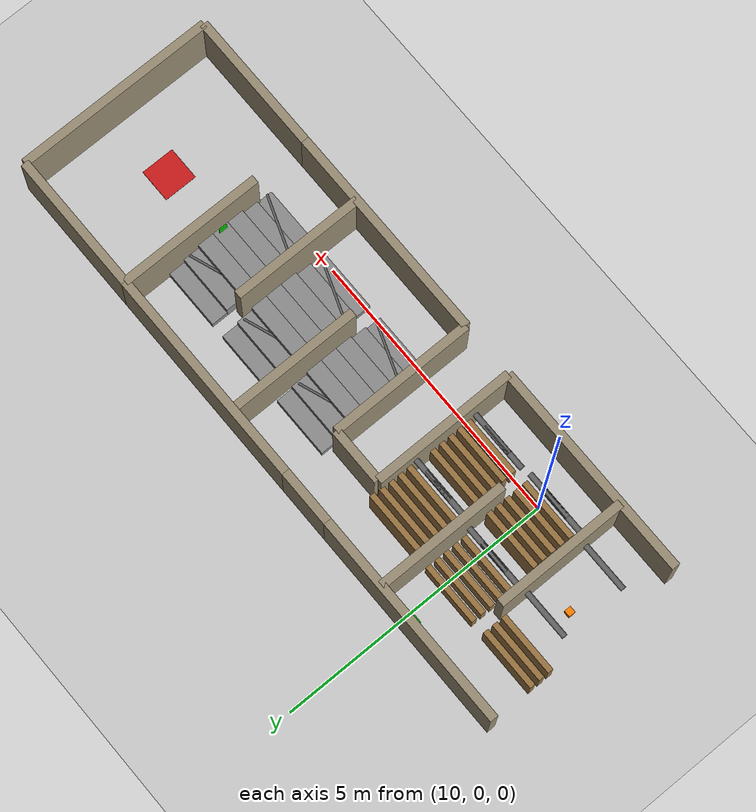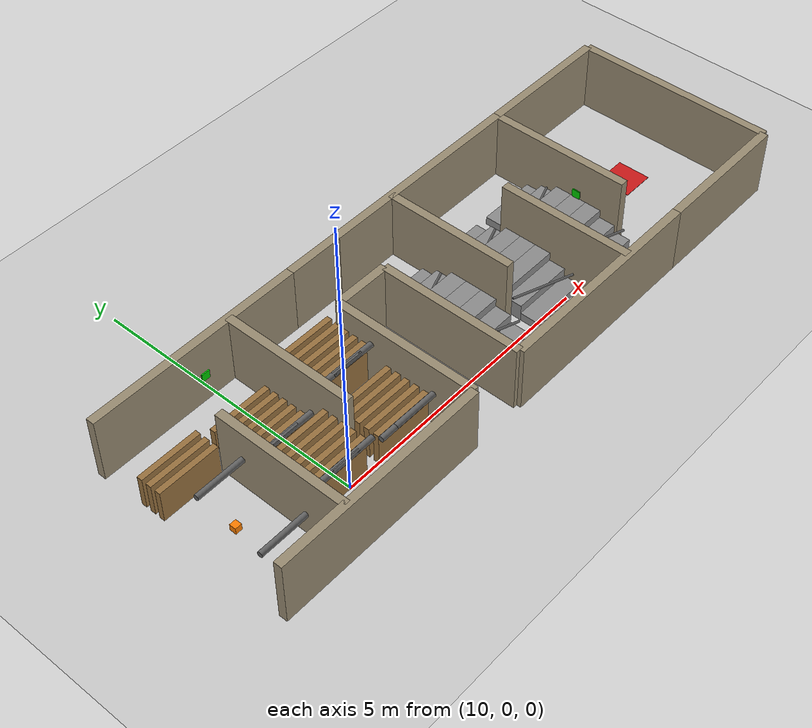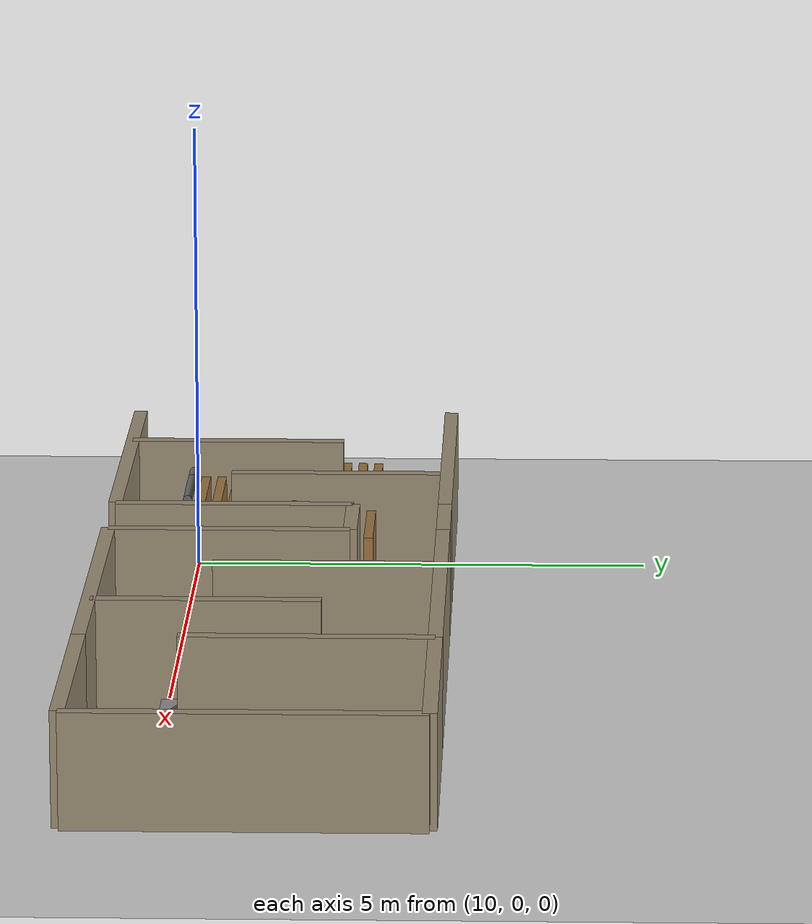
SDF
<sdf version="1.6">
 <world name="lrc_2026">
  <model name="ground_plane">
   <static>true</static>
   <link name="link">
    <collision name="collision">
     <geometry><plane><normal>0 0 1</normal><size>50 50</size></plane></geometry>
    </collision>
    <visual name="visual">
     <geometry><plane><normal>0 0 1</normal><size>50 50</size></plane></geometry>
     <material><ambient>0.8 0.8 0.8 1</ambient><diffuse>0.8 0.8 0.8 1</diffuse></material>
    </visual>
   </link>
  </model>
  <model name="LE_S">
   <static>true</static>
   <pose>9.8000 -0.8000 0.6000 0.0000 0.0000 0.0000</pose>
   <link name="link">
    <collision name="col"><geometry><box><size>3.9000 0.1500 1.2000</size></box></geometry></collision>
    <visual name="vis">
     <geometry><box><size>3.9000 0.1500 1.2000</size></box></geometry>
     <material><ambient>0.6 0.55 0.45 1.0</ambient><diffuse>0.6 0.55 0.45 1.0</diffuse></material>
    </visual>
   </link>
  </model>
  <model name="LE_N">
   <static>true</static>
   <pose>9.8000 2.8000 0.6000 0.0000 0.0000 0.0000</pose>
   <link name="link">
    <collision name="col"><geometry><box><size>3.9000 0.1500 1.2000</size></box></geometry></collision>
    <visual name="vis">
     <geometry><box><size>3.9000 0.1500 1.2000</size></box></geometry>
     <material><ambient>0.6 0.55 0.45 1.0</ambient><diffuse>0.6 0.55 0.45 1.0</diffuse></material>
    </visual>
   </link>
  </model>
  <model name="LE_E_a">
   <static>true</static>
   <pose>11.7500 0.5000 0.6000 0.0000 0.0000 0.0000</pose>
   <link name="link">
    <collision name="col"><geometry><box><size>0.1500 2.6000 1.2000</size></box></geometry></collision>
    <visual name="vis">
     <geometry><box><size>0.1500 2.6000 1.2000</size></box></geometry>
     <material><ambient>0.6 0.55 0.45 1.0</ambient><diffuse>0.6 0.55 0.45 1.0</diffuse></material>
    </visual>
   </link>
  </model>
  <model name="LE_d0">
   <static>true</static>
   <pose>9.1250 0.4000 0.6000 0.0000 0.0000 0.0000</pose>
   <link name="link">
    <collision name="col"><geometry><box><size>0.1500 2.4000 1.2000</size></box></geometry></collision>
    <visual name="vis">
     <geometry><box><size>0.1500 2.4000 1.2000</size></box></geometry>
     <material><ambient>0.6 0.55 0.45 1.0</ambient><diffuse>0.6 0.55 0.45 1.0</diffuse></material>
    </visual>
   </link>
  </model>
  <model name="LE_d1">
   <static>true</static>
   <pose>10.4750 1.6000 0.6000 0.0000 0.0000 0.0000</pose>
   <link name="link">
    <collision name="col"><geometry><box><size>0.1500 2.4000 1.2000</size></box></geometry></collision>
    <visual name="vis">
     <geometry><box><size>0.1500 2.4000 1.2000</size></box></geometry>
     <material><ambient>0.6 0.55 0.45 1.0</ambient><diffuse>0.6 0.55 0.45 1.0</diffuse></material>
    </visual>
   </link>
  </model>
  <model name="cpipe_0_0_1">
   <static>true</static>
   <pose>8.6000 -0.1000 0.4500 0 1.5708 0</pose>
   <link name="link">
    <collision name="col">
     <geometry><cylinder><radius>0.05</radius><length>0.8800000000000001</length></cylinder></geometry>
    </collision>
    <visual name="vis">
     <geometry><cylinder><radius>0.05</radius><length>0.8800000000000001</length></cylinder></geometry>
     <material><ambient>0.4 0.4 0.4 1.0</ambient><diffuse>0.4 0.4 0.4 1.0</diffuse></material>
    </visual>
   </link>
  </model>
  <model name="pclimb_0_1_2">
   <static>true</static>
   <pose>8.4500 1.6000 0.3000 0.0000 0.0000 0.0000</pose>
   <link name="link">
    <collision name="col"><geometry><box><size>1.1000 0.1000 0.6000</size></box></geometry></collision>
    <visual name="vis">
     <geometry><box><size>1.1000 0.1000 0.6000</size></box></geometry>
     <material><ambient>0.6 0.45 0.25 1.0</ambient><diffuse>0.6 0.45 0.25 1.0</diffuse></material>
    </visual>
   </link>
  </model>
  <model name="pclimb_0_1_3">
   <static>true</static>
   <pose>8.4500 1.7800 0.3000 0.0000 0.0000 0.0000</pose>
   <link name="link">
    <collision name="col"><geometry><box><size>1.1000 0.1000 0.6000</size></box></geometry></collision>
    <visual name="vis">
     <geometry><box><size>1.1000 0.1000 0.6000</size></box></geometry>
     <material><ambient>0.6 0.45 0.25 1.0</ambient><diffuse>0.6 0.45 0.25 1.0</diffuse></material>
    </visual>
   </link>
  </model>
  <model name="pclimb_0_1_4">
   <static>true</static>
   <pose>8.4500 1.9600 0.3000 0.0000 0.0000 0.0000</pose>
   <link name="link">
    <collision name="col"><geometry><box><size>1.1000 0.1000 0.6000</size></box></geometry></collision>
    <visual name="vis">
     <geometry><box><size>1.1000 0.1000 0.6000</size></box></geometry>
     <material><ambient>0.6 0.45 0.25 1.0</ambient><diffuse>0.6 0.45 0.25 1.0</diffuse></material>
    </visual>
   </link>
  </model>
  <model name="cpipe_0_1_1">
   <static>true</static>
   <pose>8.6000 1.1000 0.6500 0 1.5708 0</pose>
   <link name="link">
    <collision name="col">
     <geometry><cylinder><radius>0.05</radius><length>0.8800000000000001</length></cylinder></geometry>
    </collision>
    <visual name="vis">
     <geometry><cylinder><radius>0.05</radius><length>0.8800000000000001</length></cylinder></geometry>
     <material><ambient>0.4 0.4 0.4 1.0</ambient><diffuse>0.4 0.4 0.4 1.0</diffuse></material>
    </visual>
   </link>
  </model>
  <model name="pclimb_1_0_0">
   <static>true</static>
   <pose>9.8000 0.0400 0.4000 0.0000 0.0000 0.0000</pose>
   <link name="link">
    <collision name="col"><geometry><box><size>1.1000 0.1000 0.8000</size></box></geometry></collision>
    <visual name="vis">
     <geometry><box><size>1.1000 0.1000 0.8000</size></box></geometry>
     <material><ambient>0.6 0.45 0.25 1.0</ambient><diffuse>0.6 0.45 0.25 1.0</diffuse></material>
    </visual>
   </link>
  </model>
  <model name="pclimb_1_0_1">
   <static>true</static>
   <pose>9.8000 0.2200 0.4000 0.0000 0.0000 0.0000</pose>
   <link name="link">
    <collision name="col"><geometry><box><size>1.1000 0.1000 0.8000</size></box></geometry></collision>
    <visual name="vis">
     <geometry><box><size>1.1000 0.1000 0.8000</size></box></geometry>
     <material><ambient>0.6 0.45 0.25 1.0</ambient><diffuse>0.6 0.45 0.25 1.0</diffuse></material>
    </visual>
   </link>
  </model>
  <model name="pclimb_1_0_2">
   <static>true</static>
   <pose>9.8000 0.4000 0.4000 0.0000 0.0000 0.0000</pose>
   <link name="link">
    <collision name="col"><geometry><box><size>1.1000 0.1000 0.8000</size></box></geometry></collision>
    <visual name="vis">
     <geometry><box><size>1.1000 0.1000 0.8000</size></box></geometry>
     <material><ambient>0.6 0.45 0.25 1.0</ambient><diffuse>0.6 0.45 0.25 1.0</diffuse></material>
    </visual>
   </link>
  </model>
  <model name="pclimb_1_0_3">
   <static>true</static>
   <pose>9.8000 0.5800 0.4000 0.0000 0.0000 0.0000</pose>
   <link name="link">
    <collision name="col"><geometry><box><size>1.1000 0.1000 0.8000</size></box></geometry></collision>
    <visual name="vis">
     <geometry><box><size>1.1000 0.1000 0.8000</size></box></geometry>
     <material><ambient>0.6 0.45 0.25 1.0</ambient><diffuse>0.6 0.45 0.25 1.0</diffuse></material>
    </visual>
   </link>
  </model>
  <model name="pclimb_1_0_4">
   <static>true</static>
   <pose>9.8000 0.7600 0.4000 0.0000 0.0000 0.0000</pose>
   <link name="link">
    <collision name="col"><geometry><box><size>1.1000 0.1000 0.8000</size></box></geometry></collision>
    <visual name="vis">
     <geometry><box><size>1.1000 0.1000 0.8000</size></box></geometry>
     <material><ambient>0.6 0.45 0.25 1.0</ambient><diffuse>0.6 0.45 0.25 1.0</diffuse></material>
    </visual>
   </link>
  </model>
  <model name="cpipe_1_0_0">
   <static>true</static>
   <pose>9.6500 -0.1000 0.8500 0 1.5708 0</pose>
   <link name="link">
    <collision name="col">
     <geometry><cylinder><radius>0.05</radius><length>0.8800000000000001</length></cylinder></geometry>
    </collision>
    <visual name="vis">
     <geometry><cylinder><radius>0.05</radius><length>0.8800000000000001</length></cylinder></geometry>
     <material><ambient>0.4 0.4 0.4 1.0</ambient><diffuse>0.4 0.4 0.4 1.0</diffuse></material>
    </visual>
   </link>
  </model>
  <model name="cpipe_1_0_1">
   <static>true</static>
   <pose>9.9500 -0.1000 0.8500 0 1.5708 0</pose>
   <link name="link">
    <collision name="col">
     <geometry><cylinder><radius>0.05</radius><length>0.8800000000000001</length></cylinder></geometry>
    </collision>
    <visual name="vis">
     <geometry><cylinder><radius>0.05</radius><length>0.8800000000000001</length></cylinder></geometry>
     <material><ambient>0.4 0.4 0.4 1.0</ambient><diffuse>0.4 0.4 0.4 1.0</diffuse></material>
    </visual>
   </link>
  </model>
  <model name="pclimb_1_1_0">
   <static>true</static>
   <pose>9.8000 1.2400 0.2000 0.0000 0.0000 0.0000</pose>
   <link name="link">
    <collision name="col"><geometry><box><size>1.1000 0.1000 0.4000</size></box></geometry></collision>
    <visual name="vis">
     <geometry><box><size>1.1000 0.1000 0.4000</size></box></geometry>
     <material><ambient>0.6 0.45 0.25 1.0</ambient><diffuse>0.6 0.45 0.25 1.0</diffuse></material>
    </visual>
   </link>
  </model>
  <model name="pclimb_1_1_1">
   <static>true</static>
   <pose>9.8000 1.4200 0.2000 0.0000 0.0000 0.0000</pose>
   <link name="link">
    <collision name="col"><geometry><box><size>1.1000 0.1000 0.4000</size></box></geometry></collision>
    <visual name="vis">
     <geometry><box><size>1.1000 0.1000 0.4000</size></box></geometry>
     <material><ambient>0.6 0.45 0.25 1.0</ambient><diffuse>0.6 0.45 0.25 1.0</diffuse></material>
    </visual>
   </link>
  </model>
  <model name="pclimb_1_1_2">
   <static>true</static>
   <pose>9.8000 1.6000 0.2000 0.0000 0.0000 0.0000</pose>
   <link name="link">
    <collision name="col"><geometry><box><size>1.1000 0.1000 0.4000</size></box></geometry></collision>
    <visual name="vis">
     <geometry><box><size>1.1000 0.1000 0.4000</size></box></geometry>
     <material><ambient>0.6 0.45 0.25 1.0</ambient><diffuse>0.6 0.45 0.25 1.0</diffuse></material>
    </visual>
   </link>
  </model>
  <model name="pclimb_1_1_3">
   <static>true</static>
   <pose>9.8000 1.7800 0.2000 0.0000 0.0000 0.0000</pose>
   <link name="link">
    <collision name="col"><geometry><box><size>1.1000 0.1000 0.4000</size></box></geometry></collision>
    <visual name="vis">
     <geometry><box><size>1.1000 0.1000 0.4000</size></box></geometry>
     <material><ambient>0.6 0.45 0.25 1.0</ambient><diffuse>0.6 0.45 0.25 1.0</diffuse></material>
    </visual>
   </link>
  </model>
  <model name="pclimb_1_1_4">
   <static>true</static>
   <pose>9.8000 1.9600 0.2000 0.0000 0.0000 0.0000</pose>
   <link name="link">
    <collision name="col"><geometry><box><size>1.1000 0.1000 0.4000</size></box></geometry></collision>
    <visual name="vis">
     <geometry><box><size>1.1000 0.1000 0.4000</size></box></geometry>
     <material><ambient>0.6 0.45 0.25 1.0</ambient><diffuse>0.6 0.45 0.25 1.0</diffuse></material>
    </visual>
   </link>
  </model>
  <model name="cpipe_1_1_0">
   <static>true</static>
   <pose>9.6500 1.1000 0.4500 0 1.5708 0</pose>
   <link name="link">
    <collision name="col">
     <geometry><cylinder><radius>0.05</radius><length>0.8800000000000001</length></cylinder></geometry>
    </collision>
    <visual name="vis">
     <geometry><cylinder><radius>0.05</radius><length>0.8800000000000001</length></cylinder></geometry>
     <material><ambient>0.4 0.4 0.4 1.0</ambient><diffuse>0.4 0.4 0.4 1.0</diffuse></material>
    </visual>
   </link>
  </model>
  <model name="cpipe_1_1_1">
   <static>true</static>
   <pose>9.9500 1.1000 0.4500 0 1.5708 0</pose>
   <link name="link">
    <collision name="col">
     <geometry><cylinder><radius>0.05</radius><length>0.8800000000000001</length></cylinder></geometry>
    </collision>
    <visual name="vis">
     <geometry><cylinder><radius>0.05</radius><length>0.8800000000000001</length></cylinder></geometry>
     <material><ambient>0.4 0.4 0.4 1.0</ambient><diffuse>0.4 0.4 0.4 1.0</diffuse></material>
    </visual>
   </link>
  </model>
  <model name="pclimb_2_0_0">
   <static>true</static>
   <pose>11.1500 0.0400 0.3000 0.0000 0.0000 0.0000</pose>
   <link name="link">
    <collision name="col"><geometry><box><size>1.1000 0.1000 0.6000</size></box></geometry></collision>
    <visual name="vis">
     <geometry><box><size>1.1000 0.1000 0.6000</size></box></geometry>
     <material><ambient>0.6 0.45 0.25 1.0</ambient><diffuse>0.6 0.45 0.25 1.0</diffuse></material>
    </visual>
   </link>
  </model>
  <model name="pclimb_2_0_1">
   <static>true</static>
   <pose>11.1500 0.2200 0.3000 0.0000 0.0000 0.0000</pose>
   <link name="link">
    <collision name="col"><geometry><box><size>1.1000 0.1000 0.6000</size></box></geometry></collision>
    <visual name="vis">
     <geometry><box><size>1.1000 0.1000 0.6000</size></box></geometry>
     <material><ambient>0.6 0.45 0.25 1.0</ambient><diffuse>0.6 0.45 0.25 1.0</diffuse></material>
    </visual>
   </link>
  </model>
  <model name="pclimb_2_0_2">
   <static>true</static>
   <pose>11.1500 0.4000 0.3000 0.0000 0.0000 0.0000</pose>
   <link name="link">
    <collision name="col"><geometry><box><size>1.1000 0.1000 0.6000</size></box></geometry></collision>
    <visual name="vis">
     <geometry><box><size>1.1000 0.1000 0.6000</size></box></geometry>
     <material><ambient>0.6 0.45 0.25 1.0</ambient><diffuse>0.6 0.45 0.25 1.0</diffuse></material>
    </visual>
   </link>
  </model>
  <model name="pclimb_2_0_3">
   <static>true</static>
   <pose>11.1500 0.5800 0.3000 0.0000 0.0000 0.0000</pose>
   <link name="link">
    <collision name="col"><geometry><box><size>1.1000 0.1000 0.6000</size></box></geometry></collision>
    <visual name="vis">
     <geometry><box><size>1.1000 0.1000 0.6000</size></box></geometry>
     <material><ambient>0.6 0.45 0.25 1.0</ambient><diffuse>0.6 0.45 0.25 1.0</diffuse></material>
    </visual>
   </link>
  </model>
  <model name="pclimb_2_0_4">
   <static>true</static>
   <pose>11.1500 0.7600 0.3000 0.0000 0.0000 0.0000</pose>
   <link name="link">
    <collision name="col"><geometry><box><size>1.1000 0.1000 0.6000</size></box></geometry></collision>
    <visual name="vis">
     <geometry><box><size>1.1000 0.1000 0.6000</size></box></geometry>
     <material><ambient>0.6 0.45 0.25 1.0</ambient><diffuse>0.6 0.45 0.25 1.0</diffuse></material>
    </visual>
   </link>
  </model>
  <model name="cpipe_2_0_0">
   <static>true</static>
   <pose>11.0000 -0.1000 0.6500 0 1.5708 0</pose>
   <link name="link">
    <collision name="col">
     <geometry><cylinder><radius>0.05</radius><length>0.8800000000000001</length></cylinder></geometry>
    </collision>
    <visual name="vis">
     <geometry><cylinder><radius>0.05</radius><length>0.8800000000000001</length></cylinder></geometry>
     <material><ambient>0.4 0.4 0.4 1.0</ambient><diffuse>0.4 0.4 0.4 1.0</diffuse></material>
    </visual>
   </link>
  </model>
  <model name="cpipe_2_0_1">
   <static>true</static>
   <pose>11.3000 -0.1000 0.6500 0 1.5708 0</pose>
   <link name="link">
    <collision name="col">
     <geometry><cylinder><radius>0.05</radius><length>0.8800000000000001</length></cylinder></geometry>
    </collision>
    <visual name="vis">
     <geometry><cylinder><radius>0.05</radius><length>0.8800000000000001</length></cylinder></geometry>
     <material><ambient>0.4 0.4 0.4 1.0</ambient><diffuse>0.4 0.4 0.4 1.0</diffuse></material>
    </visual>
   </link>
  </model>
  <model name="pclimb_2_1_0">
   <static>true</static>
   <pose>11.1500 1.2400 0.4000 0.0000 0.0000 0.0000</pose>
   <link name="link">
    <collision name="col"><geometry><box><size>1.1000 0.1000 0.8000</size></box></geometry></collision>
    <visual name="vis">
     <geometry><box><size>1.1000 0.1000 0.8000</size></box></geometry>
     <material><ambient>0.6 0.45 0.25 1.0</ambient><diffuse>0.6 0.45 0.25 1.0</diffuse></material>
    </visual>
   </link>
  </model>
  <model name="pclimb_2_1_1">
   <static>true</static>
   <pose>11.1500 1.4200 0.4000 0.0000 0.0000 0.0000</pose>
   <link name="link">
    <collision name="col"><geometry><box><size>1.1000 0.1000 0.8000</size></box></geometry></collision>
    <visual name="vis">
     <geometry><box><size>1.1000 0.1000 0.8000</size></box></geometry>
     <material><ambient>0.6 0.45 0.25 1.0</ambient><diffuse>0.6 0.45 0.25 1.0</diffuse></material>
    </visual>
   </link>
  </model>
  <model name="pclimb_2_1_2">
   <static>true</static>
   <pose>11.1500 1.6000 0.4000 0.0000 0.0000 0.0000</pose>
   <link name="link">
    <collision name="col"><geometry><box><size>1.1000 0.1000 0.8000</size></box></geometry></collision>
    <visual name="vis">
     <geometry><box><size>1.1000 0.1000 0.8000</size></box></geometry>
     <material><ambient>0.6 0.45 0.25 1.0</ambient><diffuse>0.6 0.45 0.25 1.0</diffuse></material>
    </visual>
   </link>
  </model>
  <model name="pclimb_2_1_3">
   <static>true</static>
   <pose>11.1500 1.7800 0.4000 0.0000 0.0000 0.0000</pose>
   <link name="link">
    <collision name="col"><geometry><box><size>1.1000 0.1000 0.8000</size></box></geometry></collision>
    <visual name="vis">
     <geometry><box><size>1.1000 0.1000 0.8000</size></box></geometry>
     <material><ambient>0.6 0.45 0.25 1.0</ambient><diffuse>0.6 0.45 0.25 1.0</diffuse></material>
    </visual>
   </link>
  </model>
  <model name="pclimb_2_1_4">
   <static>true</static>
   <pose>11.1500 1.9600 0.4000 0.0000 0.0000 0.0000</pose>
   <link name="link">
    <collision name="col"><geometry><box><size>1.1000 0.1000 0.8000</size></box></geometry></collision>
    <visual name="vis">
     <geometry><box><size>1.1000 0.1000 0.8000</size></box></geometry>
     <material><ambient>0.6 0.45 0.25 1.0</ambient><diffuse>0.6 0.45 0.25 1.0</diffuse></material>
    </visual>
   </link>
  </model>
  <model name="cpipe_2_1_0">
   <static>true</static>
   <pose>11.0000 1.1000 0.8500 0 1.5708 0</pose>
   <link name="link">
    <collision name="col">
     <geometry><cylinder><radius>0.05</radius><length>0.8800000000000001</length></cylinder></geometry>
    </collision>
    <visual name="vis">
     <geometry><cylinder><radius>0.05</radius><length>0.8800000000000001</length></cylinder></geometry>
     <material><ambient>0.4 0.4 0.4 1.0</ambient><diffuse>0.4 0.4 0.4 1.0</diffuse></material>
    </visual>
   </link>
  </model>
  <model name="cpipe_2_1_1">
   <static>true</static>
   <pose>11.3000 1.1000 0.8500 0 1.5708 0</pose>
   <link name="link">
    <collision name="col">
     <geometry><cylinder><radius>0.05</radius><length>0.8800000000000001</length></cylinder></geometry>
    </collision>
    <visual name="vis">
     <geometry><cylinder><radius>0.05</radius><length>0.8800000000000001</length></cylinder></geometry>
     <material><ambient>0.4 0.4 0.4 1.0</ambient><diffuse>0.4 0.4 0.4 1.0</diffuse></material>
    </visual>
   </link>
  </model>
  <model name="qr_E">
   <static>true</static>
   <pose>9.8000 2.6500 0.6000 0.0000 0.0000 0.0000</pose>
   <link name="link">
    <collision name="col"><geometry><box><size>0.1500 0.0200 0.1500</size></box></geometry></collision>
    <visual name="vis">
     <geometry><box><size>0.1500 0.0200 0.1500</size></box></geometry>
     <material><ambient>0.0 0.8 0.0 1.0</ambient><diffuse>0.0 0.8 0.0 1.0</diffuse></material>
    </visual>
   </link>
  </model>
  <model name="haz_E">
   <static>true</static>
   <pose>8.4500 0.7000 0.0600 0.0000 0.0000 0.0000</pose>
   <link name="link">
    <collision name="col"><geometry><box><size>0.1200 0.1200 0.1200</size></box></geometry></collision>
    <visual name="vis">
     <geometry><box><size>0.1200 0.1200 0.1200</size></box></geometry>
     <material><ambient>1.0 0.5 0.0 1.0</ambient><diffuse>1.0 0.5 0.0 1.0</diffuse></material>
    </visual>
   </link>
  </model>
  <model name="LF_S">
   <static>true</static>
   <pose>14.7000 -0.8000 0.6000 0.0000 0.0000 0.0000</pose>
   <link name="link">
    <collision name="col"><geometry><box><size>3.9000 0.1500 1.2000</size></box></geometry></collision>
    <visual name="vis">
     <geometry><box><size>3.9000 0.1500 1.2000</size></box></geometry>
     <material><ambient>0.6 0.55 0.45 1.0</ambient><diffuse>0.6 0.55 0.45 1.0</diffuse></material>
    </visual>
   </link>
  </model>
  <model name="LF_N">
   <static>true</static>
   <pose>14.7000 2.8000 0.6000 0.0000 0.0000 0.0000</pose>
   <link name="link">
    <collision name="col"><geometry><box><size>3.9000 0.1500 1.2000</size></box></geometry></collision>
    <visual name="vis">
     <geometry><box><size>3.9000 0.1500 1.2000</size></box></geometry>
     <material><ambient>0.6 0.55 0.45 1.0</ambient><diffuse>0.6 0.55 0.45 1.0</diffuse></material>
    </visual>
   </link>
  </model>
  <model name="LF_W_a">
   <static>true</static>
   <pose>12.7500 0.5000 0.6000 0.0000 0.0000 0.0000</pose>
   <link name="link">
    <collision name="col"><geometry><box><size>0.1500 2.6000 1.2000</size></box></geometry></collision>
    <visual name="vis">
     <geometry><box><size>0.1500 2.6000 1.2000</size></box></geometry>
     <material><ambient>0.6 0.55 0.45 1.0</ambient><diffuse>0.6 0.55 0.45 1.0</diffuse></material>
    </visual>
   </link>
  </model>
  <model name="LF_E_b">
   <static>true</static>
   <pose>16.6500 1.5000 0.6000 0.0000 0.0000 0.0000</pose>
   <link name="link">
    <collision name="col"><geometry><box><size>0.1500 2.6000 1.2000</size></box></geometry></collision>
    <visual name="vis">
     <geometry><box><size>0.1500 2.6000 1.2000</size></box></geometry>
     <material><ambient>0.6 0.55 0.45 1.0</ambient><diffuse>0.6 0.55 0.45 1.0</diffuse></material>
    </visual>
   </link>
  </model>
  <model name="LF_d0">
   <static>true</static>
   <pose>14.0250 1.6000 0.6000 0.0000 0.0000 0.0000</pose>
   <link name="link">
    <collision name="col"><geometry><box><size>0.1500 2.4000 1.2000</size></box></geometry></collision>
    <visual name="vis">
     <geometry><box><size>0.1500 2.4000 1.2000</size></box></geometry>
     <material><ambient>0.6 0.55 0.45 1.0</ambient><diffuse>0.6 0.55 0.45 1.0</diffuse></material>
    </visual>
   </link>
  </model>
  <model name="LF_d1">
   <static>true</static>
   <pose>15.3750 0.4000 0.6000 0.0000 0.0000 0.0000</pose>
   <link name="link">
    <collision name="col"><geometry><box><size>0.1500 2.4000 1.2000</size></box></geometry></collision>
    <visual name="vis">
     <geometry><box><size>0.1500 2.4000 1.2000</size></box></geometry>
     <material><ambient>0.6 0.55 0.45 1.0</ambient><diffuse>0.6 0.55 0.45 1.0</diffuse></material>
    </visual>
   </link>
  </model>
  <model name="stup_0_0">
   <static>true</static>
   <pose>13.3500 0.1000 0.0750 0.0000 0.0000 0.0000</pose>
   <link name="link">
    <collision name="col"><geometry><box><size>1.1000 0.3000 0.1500</size></box></geometry></collision>
    <visual name="vis">
     <geometry><box><size>1.1000 0.3000 0.1500</size></box></geometry>
     <material><ambient>0.55 0.55 0.55 1.0</ambient><diffuse>0.55 0.55 0.55 1.0</diffuse></material>
    </visual>
   </link>
  </model>
  <model name="stup_0_1">
   <static>true</static>
   <pose>13.3500 0.4000 0.1500 0.0000 0.0000 0.0000</pose>
   <link name="link">
    <collision name="col"><geometry><box><size>1.1000 0.3000 0.3000</size></box></geometry></collision>
    <visual name="vis">
     <geometry><box><size>1.1000 0.3000 0.3000</size></box></geometry>
     <material><ambient>0.55 0.55 0.55 1.0</ambient><diffuse>0.55 0.55 0.55 1.0</diffuse></material>
    </visual>
   </link>
  </model>
  <model name="stup_0_2">
   <static>true</static>
   <pose>13.3500 0.7000 0.2250 0.0000 0.0000 0.0000</pose>
   <link name="link">
    <collision name="col"><geometry><box><size>1.1000 0.3000 0.4500</size></box></geometry></collision>
    <visual name="vis">
     <geometry><box><size>1.1000 0.3000 0.4500</size></box></geometry>
     <material><ambient>0.55 0.55 0.55 1.0</ambient><diffuse>0.55 0.55 0.55 1.0</diffuse></material>
    </visual>
   </link>
  </model>
  <model name="stland_0">
   <static>true</static>
   <pose>13.3500 1.0000 0.2250 0.0000 0.0000 0.0000</pose>
   <link name="link">
    <collision name="col"><geometry><box><size>1.1000 0.3000 0.4500</size></box></geometry></collision>
    <visual name="vis">
     <geometry><box><size>1.1000 0.3000 0.4500</size></box></geometry>
     <material><ambient>0.55 0.55 0.55 1.0</ambient><diffuse>0.55 0.55 0.55 1.0</diffuse></material>
    </visual>
   </link>
  </model>
  <model name="stdn_0_0">
   <static>true</static>
   <pose>13.3500 1.3000 0.2250 0.0000 0.0000 0.0000</pose>
   <link name="link">
    <collision name="col"><geometry><box><size>1.1000 0.3000 0.4500</size></box></geometry></collision>
    <visual name="vis">
     <geometry><box><size>1.1000 0.3000 0.4500</size></box></geometry>
     <material><ambient>0.55 0.55 0.55 1.0</ambient><diffuse>0.55 0.55 0.55 1.0</diffuse></material>
    </visual>
   </link>
  </model>
  <model name="stdn_0_1">
   <static>true</static>
   <pose>13.3500 1.6000 0.1500 0.0000 0.0000 0.0000</pose>
   <link name="link">
    <collision name="col"><geometry><box><size>1.1000 0.3000 0.3000</size></box></geometry></collision>
    <visual name="vis">
     <geometry><box><size>1.1000 0.3000 0.3000</size></box></geometry>
     <material><ambient>0.55 0.55 0.55 1.0</ambient><diffuse>0.55 0.55 0.55 1.0</diffuse></material>
    </visual>
   </link>
  </model>
  <model name="stdn_0_2">
   <static>true</static>
   <pose>13.3500 1.9000 0.0750 0.0000 0.0000 0.0000</pose>
   <link name="link">
    <collision name="col"><geometry><box><size>1.1000 0.3000 0.1500</size></box></geometry></collision>
    <visual name="vis">
     <geometry><box><size>1.1000 0.3000 0.1500</size></box></geometry>
     <material><ambient>0.55 0.55 0.55 1.0</ambient><diffuse>0.55 0.55 0.55 1.0</diffuse></material>
    </visual>
   </link>
  </model>
  <model name="debup_0">
   <static>true</static>
   <pose>13.3500 0.2500 0.3200 0.3500 1.5708 0</pose>
   <link name="link">
    <collision name="col">
     <geometry><cylinder><radius>0.02</radius><length>1.1</length></cylinder></geometry>
    </collision>
    <visual name="vis">
     <geometry><cylinder><radius>0.02</radius><length>1.1</length></cylinder></geometry>
     <material><ambient>0.4 0.4 0.4 1.0</ambient><diffuse>0.4 0.4 0.4 1.0</diffuse></material>
    </visual>
   </link>
  </model>
  <model name="debdn_0">
   <static>true</static>
   <pose>13.3500 1.4500 0.3200 -0.3500 1.5708 0</pose>
   <link name="link">
    <collision name="col">
     <geometry><cylinder><radius>0.02</radius><length>1.1</length></cylinder></geometry>
    </collision>
    <visual name="vis">
     <geometry><cylinder><radius>0.02</radius><length>1.1</length></cylinder></geometry>
     <material><ambient>0.4 0.4 0.4 1.0</ambient><diffuse>0.4 0.4 0.4 1.0</diffuse></material>
    </visual>
   </link>
  </model>
  <model name="stup_1_0">
   <static>true</static>
   <pose>14.7000 0.1000 0.0750 0.0000 0.0000 0.0000</pose>
   <link name="link">
    <collision name="col"><geometry><box><size>1.1000 0.3000 0.1500</size></box></geometry></collision>
    <visual name="vis">
     <geometry><box><size>1.1000 0.3000 0.1500</size></box></geometry>
     <material><ambient>0.55 0.55 0.55 1.0</ambient><diffuse>0.55 0.55 0.55 1.0</diffuse></material>
    </visual>
   </link>
  </model>
  <model name="stup_1_1">
   <static>true</static>
   <pose>14.7000 0.4000 0.1500 0.0000 0.0000 0.0000</pose>
   <link name="link">
    <collision name="col"><geometry><box><size>1.1000 0.3000 0.3000</size></box></geometry></collision>
    <visual name="vis">
     <geometry><box><size>1.1000 0.3000 0.3000</size></box></geometry>
     <material><ambient>0.55 0.55 0.55 1.0</ambient><diffuse>0.55 0.55 0.55 1.0</diffuse></material>
    </visual>
   </link>
  </model>
  <model name="stup_1_2">
   <static>true</static>
   <pose>14.7000 0.7000 0.2250 0.0000 0.0000 0.0000</pose>
   <link name="link">
    <collision name="col"><geometry><box><size>1.1000 0.3000 0.4500</size></box></geometry></collision>
    <visual name="vis">
     <geometry><box><size>1.1000 0.3000 0.4500</size></box></geometry>
     <material><ambient>0.55 0.55 0.55 1.0</ambient><diffuse>0.55 0.55 0.55 1.0</diffuse></material>
    </visual>
   </link>
  </model>
  <model name="stland_1">
   <static>true</static>
   <pose>14.7000 1.0000 0.2250 0.0000 0.0000 0.0000</pose>
   <link name="link">
    <collision name="col"><geometry><box><size>1.1000 0.3000 0.4500</size></box></geometry></collision>
    <visual name="vis">
     <geometry><box><size>1.1000 0.3000 0.4500</size></box></geometry>
     <material><ambient>0.55 0.55 0.55 1.0</ambient><diffuse>0.55 0.55 0.55 1.0</diffuse></material>
    </visual>
   </link>
  </model>
  <model name="stdn_1_0">
   <static>true</static>
   <pose>14.7000 1.3000 0.2250 0.0000 0.0000 0.0000</pose>
   <link name="link">
    <collision name="col"><geometry><box><size>1.1000 0.3000 0.4500</size></box></geometry></collision>
    <visual name="vis">
     <geometry><box><size>1.1000 0.3000 0.4500</size></box></geometry>
     <material><ambient>0.55 0.55 0.55 1.0</ambient><diffuse>0.55 0.55 0.55 1.0</diffuse></material>
    </visual>
   </link>
  </model>
  <model name="stdn_1_1">
   <static>true</static>
   <pose>14.7000 1.6000 0.1500 0.0000 0.0000 0.0000</pose>
   <link name="link">
    <collision name="col"><geometry><box><size>1.1000 0.3000 0.3000</size></box></geometry></collision>
    <visual name="vis">
     <geometry><box><size>1.1000 0.3000 0.3000</size></box></geometry>
     <material><ambient>0.55 0.55 0.55 1.0</ambient><diffuse>0.55 0.55 0.55 1.0</diffuse></material>
    </visual>
   </link>
  </model>
  <model name="stdn_1_2">
   <static>true</static>
   <pose>14.7000 1.9000 0.0750 0.0000 0.0000 0.0000</pose>
   <link name="link">
    <collision name="col"><geometry><box><size>1.1000 0.3000 0.1500</size></box></geometry></collision>
    <visual name="vis">
     <geometry><box><size>1.1000 0.3000 0.1500</size></box></geometry>
     <material><ambient>0.55 0.55 0.55 1.0</ambient><diffuse>0.55 0.55 0.55 1.0</diffuse></material>
    </visual>
   </link>
  </model>
  <model name="debup_1">
   <static>true</static>
   <pose>14.7000 0.2500 0.3200 0.3500 1.5708 0</pose>
   <link name="link">
    <collision name="col">
     <geometry><cylinder><radius>0.02</radius><length>1.1</length></cylinder></geometry>
    </collision>
    <visual name="vis">
     <geometry><cylinder><radius>0.02</radius><length>1.1</length></cylinder></geometry>
     <material><ambient>0.4 0.4 0.4 1.0</ambient><diffuse>0.4 0.4 0.4 1.0</diffuse></material>
    </visual>
   </link>
  </model>
  <model name="debdn_1">
   <static>true</static>
   <pose>14.7000 1.4500 0.3200 -0.3500 1.5708 0</pose>
   <link name="link">
    <collision name="col">
     <geometry><cylinder><radius>0.02</radius><length>1.1</length></cylinder></geometry>
    </collision>
    <visual name="vis">
     <geometry><cylinder><radius>0.02</radius><length>1.1</length></cylinder></geometry>
     <material><ambient>0.4 0.4 0.4 1.0</ambient><diffuse>0.4 0.4 0.4 1.0</diffuse></material>
    </visual>
   </link>
  </model>
  <model name="stup_2_0">
   <static>true</static>
   <pose>16.0500 0.1000 0.0750 0.0000 0.0000 0.0000</pose>
   <link name="link">
    <collision name="col"><geometry><box><size>1.1000 0.3000 0.1500</size></box></geometry></collision>
    <visual name="vis">
     <geometry><box><size>1.1000 0.3000 0.1500</size></box></geometry>
     <material><ambient>0.55 0.55 0.55 1.0</ambient><diffuse>0.55 0.55 0.55 1.0</diffuse></material>
    </visual>
   </link>
  </model>
  <model name="stup_2_1">
   <static>true</static>
   <pose>16.0500 0.4000 0.1500 0.0000 0.0000 0.0000</pose>
   <link name="link">
    <collision name="col"><geometry><box><size>1.1000 0.3000 0.3000</size></box></geometry></collision>
    <visual name="vis">
     <geometry><box><size>1.1000 0.3000 0.3000</size></box></geometry>
     <material><ambient>0.55 0.55 0.55 1.0</ambient><diffuse>0.55 0.55 0.55 1.0</diffuse></material>
    </visual>
   </link>
  </model>
  <model name="stup_2_2">
   <static>true</static>
   <pose>16.0500 0.7000 0.2250 0.0000 0.0000 0.0000</pose>
   <link name="link">
    <collision name="col"><geometry><box><size>1.1000 0.3000 0.4500</size></box></geometry></collision>
    <visual name="vis">
     <geometry><box><size>1.1000 0.3000 0.4500</size></box></geometry>
     <material><ambient>0.55 0.55 0.55 1.0</ambient><diffuse>0.55 0.55 0.55 1.0</diffuse></material>
    </visual>
   </link>
  </model>
  <model name="stland_2">
   <static>true</static>
   <pose>16.0500 1.0000 0.2250 0.0000 0.0000 0.0000</pose>
   <link name="link">
    <collision name="col"><geometry><box><size>1.1000 0.3000 0.4500</size></box></geometry></collision>
    <visual name="vis">
     <geometry><box><size>1.1000 0.3000 0.4500</size></box></geometry>
     <material><ambient>0.55 0.55 0.55 1.0</ambient><diffuse>0.55 0.55 0.55 1.0</diffuse></material>
    </visual>
   </link>
  </model>
  <model name="stdn_2_0">
   <static>true</static>
   <pose>16.0500 1.3000 0.2250 0.0000 0.0000 0.0000</pose>
   <link name="link">
    <collision name="col"><geometry><box><size>1.1000 0.3000 0.4500</size></box></geometry></collision>
    <visual name="vis">
     <geometry><box><size>1.1000 0.3000 0.4500</size></box></geometry>
     <material><ambient>0.55 0.55 0.55 1.0</ambient><diffuse>0.55 0.55 0.55 1.0</diffuse></material>
    </visual>
   </link>
  </model>
  <model name="stdn_2_1">
   <static>true</static>
   <pose>16.0500 1.6000 0.1500 0.0000 0.0000 0.0000</pose>
   <link name="link">
    <collision name="col"><geometry><box><size>1.1000 0.3000 0.3000</size></box></geometry></collision>
    <visual name="vis">
     <geometry><box><size>1.1000 0.3000 0.3000</size></box></geometry>
     <material><ambient>0.55 0.55 0.55 1.0</ambient><diffuse>0.55 0.55 0.55 1.0</diffuse></material>
    </visual>
   </link>
  </model>
  <model name="stdn_2_2">
   <static>true</static>
   <pose>16.0500 1.9000 0.0750 0.0000 0.0000 0.0000</pose>
   <link name="link">
    <collision name="col"><geometry><box><size>1.1000 0.3000 0.1500</size></box></geometry></collision>
    <visual name="vis">
     <geometry><box><size>1.1000 0.3000 0.1500</size></box></geometry>
     <material><ambient>0.55 0.55 0.55 1.0</ambient><diffuse>0.55 0.55 0.55 1.0</diffuse></material>
    </visual>
   </link>
  </model>
  <model name="debup_2">
   <static>true</static>
   <pose>16.0500 0.2500 0.3200 0.3500 1.5708 0</pose>
   <link name="link">
    <collision name="col">
     <geometry><cylinder><radius>0.02</radius><length>1.1</length></cylinder></geometry>
    </collision>
    <visual name="vis">
     <geometry><cylinder><radius>0.02</radius><length>1.1</length></cylinder></geometry>
     <material><ambient>0.4 0.4 0.4 1.0</ambient><diffuse>0.4 0.4 0.4 1.0</diffuse></material>
    </visual>
   </link>
  </model>
  <model name="debdn_2">
   <static>true</static>
   <pose>16.0500 1.4500 0.3200 -0.3500 1.5708 0</pose>
   <link name="link">
    <collision name="col">
     <geometry><cylinder><radius>0.02</radius><length>1.1</length></cylinder></geometry>
    </collision>
    <visual name="vis">
     <geometry><cylinder><radius>0.02</radius><length>1.1</length></cylinder></geometry>
     <material><ambient>0.4 0.4 0.4 1.0</ambient><diffuse>0.4 0.4 0.4 1.0</diffuse></material>
    </visual>
   </link>
  </model>
  <model name="qr_F">
   <static>true</static>
   <pose>16.5000 1.0000 0.6000 0.0000 0.0000 0.0000</pose>
   <link name="link">
    <collision name="col"><geometry><box><size>0.0200 0.1500 0.1500</size></box></geometry></collision>
    <visual name="vis">
     <geometry><box><size>0.0200 0.1500 0.1500</size></box></geometry>
     <material><ambient>0.0 0.8 0.0 1.0</ambient><diffuse>0.0 0.8 0.0 1.0</diffuse></material>
    </visual>
   </link>
  </model>
  <model name="haz_F">
   <static>true</static>
   <pose>13.3500 0.5000 0.0600 0.0000 0.0000 0.0000</pose>
   <link name="link">
    <collision name="col"><geometry><box><size>0.1200 0.1200 0.1200</size></box></geometry></collision>
    <visual name="vis">
     <geometry><box><size>0.1200 0.1200 0.1200</size></box></geometry>
     <material><ambient>1.0 0.5 0.0 1.0</ambient><diffuse>1.0 0.5 0.0 1.0</diffuse></material>
    </visual>
   </link>
  </model>
  <model name="cor4_S">
   <static>true</static>
   <pose>12.2500 1.8000 0.6000 0.0000 0.0000 0.0000</pose>
   <link name="link">
    <collision name="col"><geometry><box><size>1.0000 0.1500 1.2000</size></box></geometry></collision>
    <visual name="vis">
     <geometry><box><size>1.0000 0.1500 1.2000</size></box></geometry>
     <material><ambient>0.6 0.55 0.45 1.0</ambient><diffuse>0.6 0.55 0.45 1.0</diffuse></material>
    </visual>
   </link>
  </model>
  <model name="cor4_N">
   <static>true</static>
   <pose>12.2500 2.8000 0.6000 0.0000 0.0000 0.0000</pose>
   <link name="link">
    <collision name="col"><geometry><box><size>1.0000 0.1500 1.2000</size></box></geometry></collision>
    <visual name="vis">
     <geometry><box><size>1.0000 0.1500 1.2000</size></box></geometry>
     <material><ambient>0.6 0.55 0.45 1.0</ambient><diffuse>0.6 0.55 0.45 1.0</diffuse></material>
    </visual>
   </link>
  </model>
  <model name="finish_S">
   <static>true</static>
   <pose>17.9000 -0.8000 0.6000 0.0000 0.0000 0.0000</pose>
   <link name="link">
    <collision name="col"><geometry><box><size>2.5000 0.1500 1.2000</size></box></geometry></collision>
    <visual name="vis">
     <geometry><box><size>2.5000 0.1500 1.2000</size></box></geometry>
     <material><ambient>0.6 0.55 0.45 1.0</ambient><diffuse>0.6 0.55 0.45 1.0</diffuse></material>
    </visual>
   </link>
  </model>
  <model name="finish_N">
   <static>true</static>
   <pose>17.9000 2.8000 0.6000 0.0000 0.0000 0.0000</pose>
   <link name="link">
    <collision name="col"><geometry><box><size>2.5000 0.1500 1.2000</size></box></geometry></collision>
    <visual name="vis">
     <geometry><box><size>2.5000 0.1500 1.2000</size></box></geometry>
     <material><ambient>0.6 0.55 0.45 1.0</ambient><diffuse>0.6 0.55 0.45 1.0</diffuse></material>
    </visual>
   </link>
  </model>
  <model name="finish_E">
   <static>true</static>
   <pose>19.1500 1.0000 0.6000 0.0000 0.0000 0.0000</pose>
   <link name="link">
    <collision name="col"><geometry><box><size>0.1500 3.6000 1.2000</size></box></geometry></collision>
    <visual name="vis">
     <geometry><box><size>0.1500 3.6000 1.2000</size></box></geometry>
     <material><ambient>0.6 0.55 0.45 1.0</ambient><diffuse>0.6 0.55 0.45 1.0</diffuse></material>
    </visual>
   </link>
  </model>
  <model name="finish_marker">
   <static>true</static>
   <pose>17.9000 1.0000 0.0050 0.0000 0.0000 0.0000</pose>
   <link name="link">
    <collision name="col"><geometry><box><size>0.6000 0.6000 0.0100</size></box></geometry></collision>
    <visual name="vis">
     <geometry><box><size>0.6000 0.6000 0.0100</size></box></geometry>
     <material><ambient>0.8 0.1 0.1 1.0</ambient><diffuse>0.8 0.1 0.1 1.0</diffuse></material>
    </visual>
   </link>
  </model>
 </world>
</sdf>
